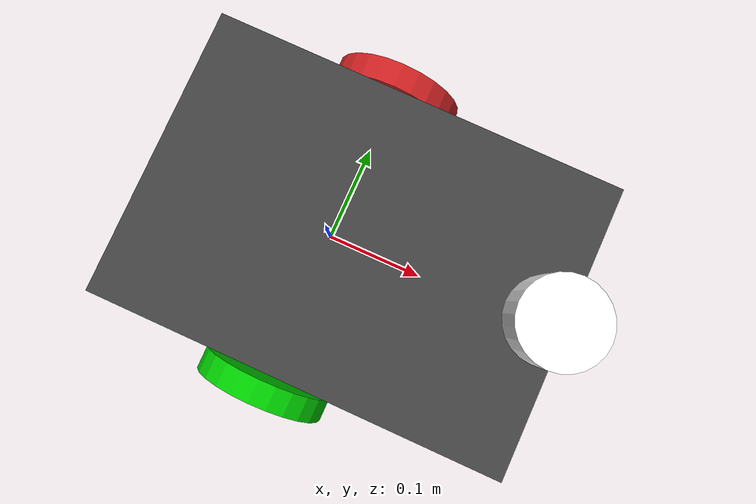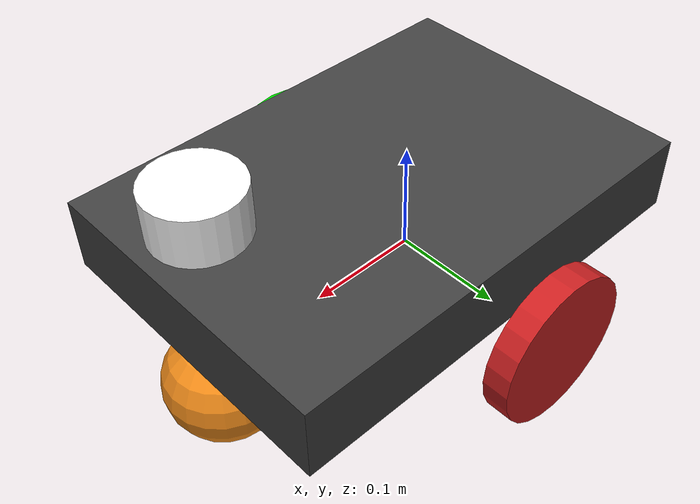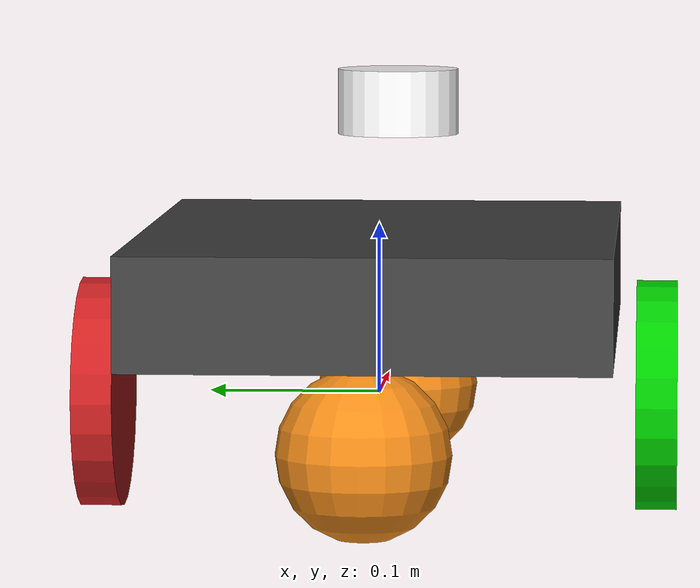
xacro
<?xml version="1.0" ?>

<!-- inspired from http://www.theconstructsim.com/ros-projects-exploring-ros-using-2-wheeled-robot-part-1/#part1  -->

<robot name="mnwlk3r" xmlns:xacro="https://www.ros.org/wiki/xacro" >

  <material name="black">
    <color rgba="0.0 0.0 0.0 1.0"/>
  </material>
  <material name="blue">
    <color rgba="0.0 0.0 0.8 1.0"/>
  </material>
  <material name="green">
    <color rgba="0.0 0.8 0.0 1.0"/>
  </material>
  <material name="grey">
    <color rgba="0.25 0.25 0.25 1.0"/>
  </material>
  <material name="orange">
    <color rgba="1.0 0.423529411765 0.0392156862745 1.0"/>
  </material>
  <material name="brown">
    <color rgba="0.870588235294 0.811764705882 0.764705882353 1.0"/>
  </material>
  <material name="red">
    <color rgba="0.80078125 0.12890625 0.1328125 1.0"/>
  </material>
  <material name="white">
    <color rgba="1.0 1.0 1.0 1.0"/>
  </material>

  <gazebo reference="base_footprint">
    <material>Gazebo/Orange</material>
  </gazebo>
  <gazebo reference="link_left_wheel">
    <material>Gazebo/Blue</material>
  </gazebo>
  <gazebo reference="link_right_wheel">
    <material>Gazebo/Green</material>
  </gazebo>

    <xacro:macro name="cylinder_inertia" params="mass r l">
      <mass value="${mass}" />
      <inertia  ixx="${mass*(3*r*r+l*l)/12}" ixy = "0" ixz = "0"
                iyy="${mass*(3*r*r+l*l)/12}" iyz = "0"
                izz="${mass*(r*r)/2}" />
    </xacro:macro>
   <xacro:macro name="box_inertia" params="x y z mass">
    <mass value="${mass}" />

    <inertia ixx="${0.0833333 * mass * (y*y + z*z)}" ixy="0.0" ixz="0.0"
       iyy="${0.0833333 * mass * (x*x + z*z)}" iyz="0.0"
       izz="${0.0833333 * mass * (x*x + y*y)}" />
   </xacro:macro>

  <link name="base_footprint">
    <!-- pose and inertial -->
    <pose>0 0 0.068 0 0 0</pose>
    <inertial>
      <origin xyz="0.030 0 0.062" rpy="0.0 0 0"  />
      <xacro:box_inertia mass="5.2" x="0.400" y="0.280" z="0.066" />
    </inertial>

    <collision name="collision_chassis">
      <origin xyz="0.030 0 0.062" rpy="0 0 0" />
      <geometry>
        <box size="0.400 0.280 0.066"/>
      </geometry>
    </collision>

    <visual>
      <origin xyz="0.030 0 0.062" rpy="0 0 0" />  <!-- Z = 29mm offset + half box height = 29 + 66/2 = 62mm   -->
      <geometry>
        <box size="0.400 0.280 0.066"/>
      </geometry>
      <material name="grey"/>
    </visual>

    <!-- caster front (63mm diameter) -->
    <collision name="caster_front_collision">
      <!-- Z = - main wheel radius + caster wheel radius = -136/2 + 63/2 = -68 + 31.5 = -36.5mm  -->
      <origin xyz="0.200 0.000 ${-0.136/2 + 0.050}"  rpy=" 0 0 0"  />
      <geometry>
        <sphere radius="0.050"/>
      </geometry>
      <surface>
        <friction>
          <ode>
            <mu>0</mu>
            <mu2>0</mu2>
            <slip1>1.0</slip1>
            <slip2>1.0</slip2>
          </ode>
        </friction>
      </surface>
    </collision>
    <visual name="caster_front_left_visual">
      <origin xyz="0.200 0.000 ${-0.136/2 + 0.050}"  rpy=" 0 0 0"  />
      <geometry>
        <sphere radius="0.050"/>
      </geometry>
    </visual>

    <!-- caster bask  -->
    <collision name="caster_back_collision">
      <origin xyz="-0.150 0.000 ${-0.136/2 + 0.050}"  rpy=" 0 0 0"  />
      <geometry>
        <sphere radius="0.050"/>
      </geometry>
      <surface>
        <friction>
          <ode>
            <mu>0</mu>
            <mu2>0</mu2>
            <slip1>1.0</slip1>
            <slip2>1.0</slip2>
          </ode>
        </friction>
      </surface>
    </collision>
    <visual name="caster_back_left_visual">
      <origin xyz="-0.150 0.000 ${-0.136/2 + 0.050}"  rpy=" 0 0 0"  />
      <geometry>
        <sphere radius="0.050"/>
      </geometry>
    </visual>

  </link>

  <!-- Create wheel right -->
  <!-- wheel diameter 136mm  |  width 24mm -->
  <link name="link_right_wheel">
    <inertial>
      <origin  xyz="0 0 0" rpy="1.5707 0 0" />  <!-- only 90 deg rotation on X = pi/2 -->
      <xacro:cylinder_inertia mass="0.150" r="${0.136/2}" l="0.024" />
    </inertial>

    <collision name="link_right_wheel_collision">
      <origin  xyz="0 0 0" rpy="1.5707 0 0" />
      <geometry>
        <cylinder length="0.024" radius="0.068"/>
      </geometry>
    </collision>

    <visual name="link_right_wheel_visual">
      <origin  xyz="0 0 0" rpy="1.5707 0 0" />
      <geometry>
        <cylinder length="0.024" radius="0.068"/>
      </geometry>
      <material name="green"/>
    </visual>

  </link>

  <!--   Joint for right wheel  -->
  <joint name="joint_right_wheel" type="continuous">
    <origin xyz="0 -0.164 -0.001" rpy="0 0 0"  /> <!-- X=0  |  Y = half box width + 12m spacer + half wheel width ==> x = -280/2 - 12mm -24/2 = -164mm  -->
    <child link="link_right_wheel" />
    <parent link="base_footprint"/>
    <axis  xyz="0 1 0" rpy="0 0 0" />
    <limit lower="0" upper="0" effort="10000" velocity="1000" />
    <joint_properties damping="1.0" friction="1.0" />
  </joint>

  <gazebo reference="link_right_wheel">
			<mu1 value="100000"/>
			<mu2 value="100000"/>
			<kp value="1000000.0" />
			<kd value="100.0" />
			<fdir1 value="1 0 0"/>
			<minDepth>0.005</minDepth>
			<gravity>true</gravity>
	</gazebo>

  <!-- Create wheel left -->
  <!-- wheel diameter 136mm  |  width 24mm -->
  <link name="link_left_wheel">
    <inertial>
      <origin  xyz="0 0 0" rpy="1.5707 0 0" />  <!-- only 90 deg rotation on X = pi/2 -->
      <xacro:cylinder_inertia mass="0.150" r="${0.136/2}" l="0.024" />
    </inertial>

    <collision name="link_left_wheel_collision">
      <origin  xyz="0 0 0" rpy="1.5707 0 0" />
      <geometry>
        <cylinder length="0.024" radius="0.068"/>
      </geometry>
    </collision>

    <visual name="link_left_wheel_visual">
      <origin  xyz="0 0 0" rpy="1.5707 0 0" />
      <geometry>
        <cylinder length="0.024" radius="0.068"/>
      </geometry>
      <material name="red"/>
    </visual>

  </link>

  <!--   Joint for left wheel  -->
  <joint name="joint_left_wheel" type="continuous">
    <origin xyz="0 0.164 -0.001" rpy="0 0 0"  /> <!-- X=0  |  Y = half box width + 12m spacer + half wheel width ==> x = -280/2 - 12mm -24/2 = -164mm  -->
    <child link="link_left_wheel" />
    <parent link="base_footprint"/>
    <axis  xyz="0 1 0" rpy="0 0 0" />
    <limit lower="0" upper="0" effort="10000" velocity="1000" />
    <joint_properties damping="1.0" friction="1.0" />
  </joint>

  <gazebo reference="link_left_wheel">
			<mu1 value="100000"/>
			<mu2 value="100000"/>
			<kp value="1000000.0" />
			<kd value="100.0" />
			<fdir1 value="1 0 0"/>
			<minDepth>0.005</minDepth>
			<gravity>true</gravity>
	</gazebo>

   <!--  *** RPLIDAR LASERSCAN ***  -->
   <!--  specs => https://www.slamtec.com/en/Lidar/A2Spec  -->
   <link name="sensor_laser">
    <inertial>
      <origin xyz="0 0 0" rpy="0 0 0" />
      <!-- this time we use a xacro to calculate inertia  -->
      <xacro:cylinder_inertia mass="0.190" r="0.038" l="0.041" />
    </inertial>

    <visual>
      <origin xyz="0 0 0" rpy="0 0 0" />
      <geometry>
        <cylinder radius="0.038" length="0.041"/>
      </geometry>
      <material name="white" />
    </visual>

    <collision>
      <origin xyz="0 0 0" rpy="0 0 0" />
      <geometry>
        <cylinder radius="0.038" length="0.041"/>
      </geometry>
    </collision>
  </link>

  <joint name="joint_sensor_laser" type="fixed">
    <origin xyz="0.200 0.000 0.160" rpy="0 0 1.5707" />
    <child link="sensor_laser"/>
    <parent link="base_footprint"/>
  </joint>

   <!-- GAZEBO SIMULATION PARAMS / PLUGIN -->
   <gazebo>
       <plugin filename="libgazebo_ros_diff_drive.so" name="differential_drive_controller">
         <alwaysOn>true</alwaysOn>
         <updateRate>20</updateRate>
         <leftJoint>joint_left_wheel</leftJoint>
         <rightJoint>joint_right_wheel</rightJoint>
         <wheelSeparation>${0.164*2}</wheelSeparation>
         <wheelDiameter>0.136</wheelDiameter>
         <torque>10</torque>
         <commandTopic>cmd_vel</commandTopic>
         <odometryTopic>odom</odometryTopic>
         <odometryFrame>odom</odometryFrame>
         <robotBaseFrame>base_footprint</robotBaseFrame>
         <legacyMode>false</legacyMode>
       </plugin>
     </gazebo>

    <gazebo reference="sensor_laser">  <!-- http://www.theconstructsim.com/ros-projects-exploring-ros-using-2-wheeled-robot-part-1/#part3 -->
        <sensor type="ray" name="head_rplidar_sensor">
          <pose>0 0 0 0 0 0</pose>
          <visualize>false</visualize>
          <update_rate>20</update_rate>  <!-- Controls how often (how fast) the laser data is captured -->
          <ray>
            <scan>
              <horizontal>
                <samples>360</samples>    <!-- Defines how how many readings are contained in one scan -->
                <resolution>1</resolution> <!-- Defines the minimum angular distance between readings captured in a laser scan -->
                <min_angle>${0}</min_angle>
                <max_angle>${2*pi-0.01}</max_angle>
              </horizontal>
            </scan>
            <range>
              <min>0.10</min>
              <max>18.0</max>
              <resolution>0.01</resolution>
            </range>
            <noise>
              <type>gaussian</type>
              <mean>0.0</mean>
              <stddev>0.01</stddev>
            </noise>
          </ray>
          <plugin name="gazebo_ros_head_rplidar_controller" filename="libgazebo_ros_laser.so">
            <topicName>/scan</topicName>
            <frameName>sensor_laser</frameName>
          </plugin>
        </sensor>
    </gazebo>

</robot>
